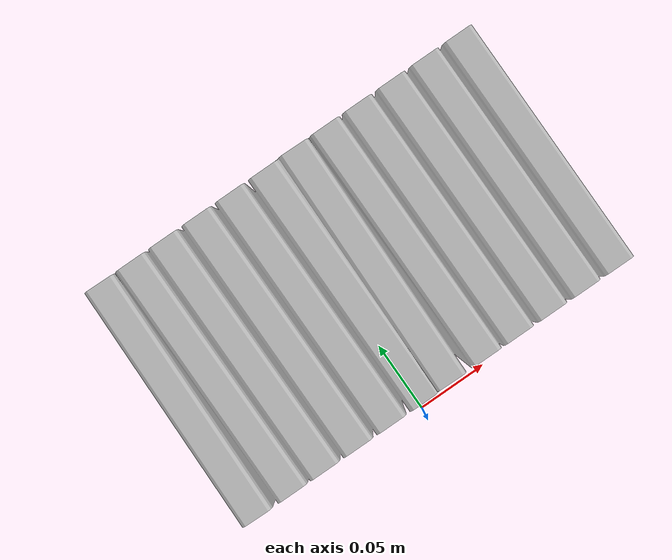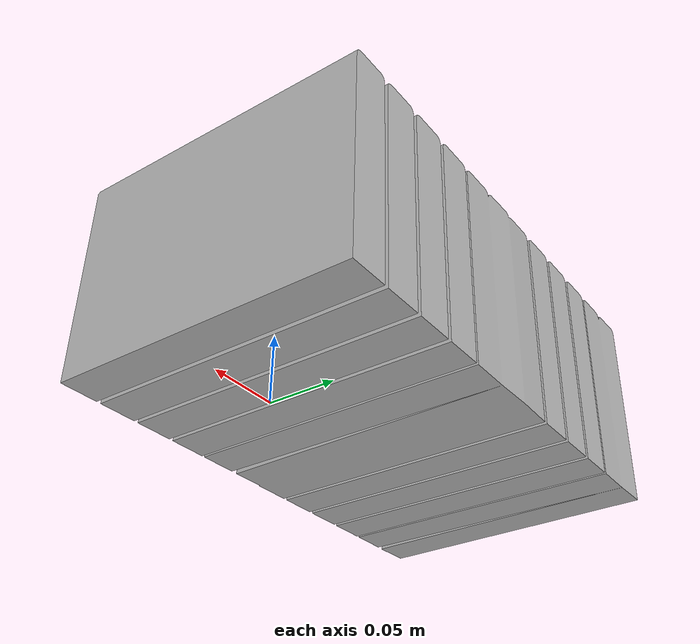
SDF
<?xml version="1.0" ?>
<sdf version="1.4">
  <model name="shelf1_book1_v4">
    <link name="body">
      <pose>0 0 0 0 0 0</pose>
      <inertial>
        <pose>   0.015394   0.096970  -0.005588 0 0 0</pose>
        <mass>0.5</mass>
        <inertia>
          <ixx>0.01</ixx>
          <ixy>0</ixy>
          <ixz>0</ixz>
          <iyy>0.01</iyy>
          <iyz>0</iyz>
          <izz>0.01</izz>
        </inertia>
      </inertial>
      <collision name="collision">
        <geometry>
          <mesh>
            <uri>model://bookshelf/shelf1_items/book1_v4/book1_v4.dae</uri>
          </mesh>
        </geometry>
      </collision>
      <visual name="visual">
        <geometry>
          <mesh>
            <uri>model://bookshelf/shelf1_items/book1_v4/book1_v4.dae</uri>
          </mesh>
        </geometry>
      </visual>
    </link>
  </model>
</sdf>
